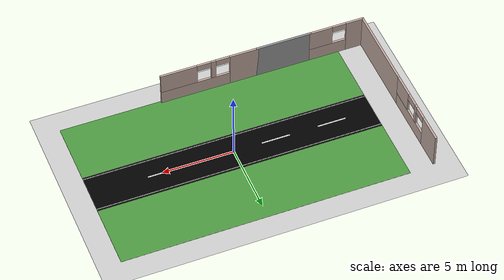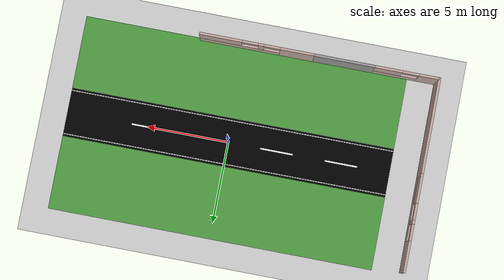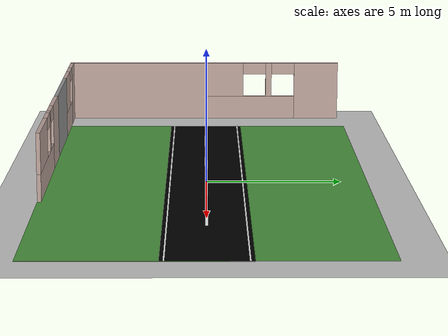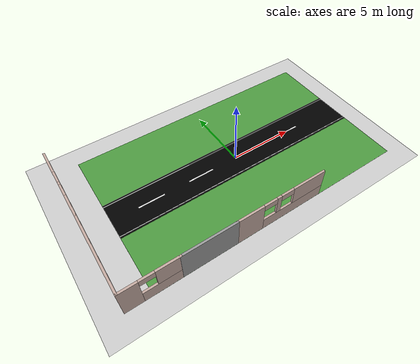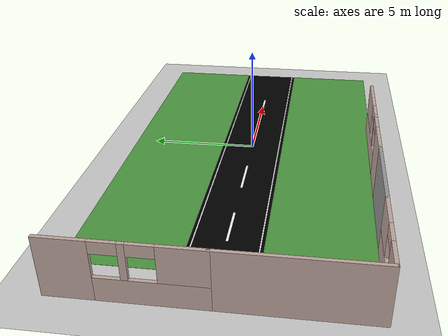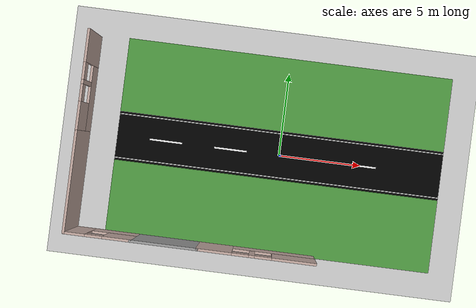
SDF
<sdf version="1.7">
 <world name="default">
  <model name="ground_plane">
   <static>1</static>
   <link name="link">
    <collision name="collision">
     <geometry><plane><normal>0 0 1</normal><size>100 100</size></plane></geometry>
     <surface>
      <contact><collide_bitmask>65535</collide_bitmask></contact>
      <friction><ode><mu>100</mu><mu2>50</mu2></ode></friction>
     </surface>
    </collision>
    <visual name="visual">
     <cast_shadows>0</cast_shadows>
     <geometry><plane><normal>0 0 1</normal><size>100 100</size></plane></geometry>
     <material>
      <script><uri>file://media/materials/scripts/gazebo.material</uri><name>Gazebo/Grey</name></script>
     </material>
    </visual>
   </link>
  </model>
  <model name="road">
   <static>1</static>
   <link name="link">
    <visual name="road_visual">
     <geometry><box><size>20 3 0.01</size></box></geometry>
     <material><ambient>0 0 0 1</ambient><diffuse>0 0 0 1</diffuse></material>
    </visual>
    <visual name="middle_line_1">
     <pose>-7 0 0.005 0 -0 0</pose>
     <geometry><box><size>2 0.1 0.01</size></box></geometry>
     <material><ambient>1 1 1 1</ambient></material>
    </visual>
    <visual name="middle_line_2">
     <pose>-3 0 0.005 0 -0 0</pose>
     <geometry><box><size>2 0.1 0.01</size></box></geometry>
     <material><ambient>1 1 1 1</ambient></material>
    </visual>
    <visual name="middle_line_3">
     <pose>1 0 0.005 0 -0 0</pose>
     <geometry><box><size>2 0.1 0.01</size></box></geometry>
     <material><ambient>1 1 1 1</ambient></material>
    </visual>
    <visual name="middle_line_4">
     <pose>5 0 0.005 0 -0 0</pose>
     <geometry><box><size>2 0.1 0.01</size></box></geometry>
     <material><ambient>1 1 1 1</ambient></material>
    </visual>
    <visual name="left_side_line">
     <pose>0 1.35 0.005 0 -0 0</pose>
     <geometry><box><size>20 0.05 0.01</size></box></geometry>
     <material><ambient>1 1 1 1</ambient></material>
    </visual>
    <visual name="right_side_line">
     <pose>0 -1.35 0.005 0 -0 0</pose>
     <geometry><box><size>20 0.05 0.01</size></box></geometry>
     <material><ambient>1 1 1 1</ambient></material>
    </visual>
    <collision name="road_collision"><geometry><box><size>20 3 0.01</size></box></geometry></collision>
   </link>
  </model>
  <model name="grass_left">
   <static>1</static>
   <link name="link">
    <visual name="visual">
     <geometry><plane><normal>0 0 1</normal><size>20 6</size></plane></geometry>
     <material>
      <script><uri>file://media/materials/scripts/gazebo.material</uri><name>Gazebo/Grass</name></script>
     </material>
    </visual>
   </link>
   <pose>0 3 0.001 0 -0 0</pose>
  </model>
  <model name="grass_right">
   <static>1</static>
   <link name="link">
    <visual name="visual">
     <geometry><plane><normal>0 0 1</normal><size>20 6</size></plane></geometry>
     <material>
      <script><uri>file://media/materials/scripts/gazebo.material</uri><name>Gazebo/Grass</name></script>
     </material>
    </visual>
   </link>
   <pose>0 -3 0.001 0 -0 0</pose>
  </model>
  <model name="Boundary">
   <link name="Wall_0">
    <pose>-12.8748 2.91767 0 0 0 -1.5708</pose>
    <visual name="Wall_0_Visual_0">
     <pose>-2.03434 0 1.25 0 -0 0</pose>
     <geometry><box><size>1.93132 0.15 2.5</size></box></geometry>
     <material>
      <script><uri>file://media/materials/scripts/gazebo.material</uri><name>Gazebo/Grey</name></script>
      <ambient>0.760784 0.662745 0.627451 1</ambient>
      <shader type="pixel"/>
     </material>
    </visual>
    <visual name="Wall_0_Visual_1">
     <pose>0.965658 0 0.5 0 -0 0</pose>
     <geometry><box><size>4.06868 0.15 1</size></box></geometry>
     <material>
      <script><uri>file://media/materials/scripts/gazebo.material</uri><name>Gazebo/Grey</name></script>
      <ambient>0.760784 0.662745 0.627451 1</ambient>
      <shader type="pixel"/>
     </material>
    </visual>
    <visual name="Wall_0_Visual_2">
     <pose>0.061576 0 1.75 0 -0 0</pose>
     <geometry><box><size>0.26052 0.15 1.5</size></box></geometry>
     <material>
      <script><uri>file://media/materials/scripts/gazebo.material</uri><name>Gazebo/Grey</name></script>
      <ambient>0.760784 0.662745 0.627451 1</ambient>
      <shader type="pixel"/>
     </material>
    </visual>
    <visual name="Wall_0_Visual_3">
     <pose>2.09592 0 1.75 0 -0 0</pose>
     <geometry><box><size>1.80816 0.15 1.5</size></box></geometry>
     <material>
      <script><uri>file://media/materials/scripts/gazebo.material</uri><name>Gazebo/Grey</name></script>
      <ambient>0.760784 0.662745 0.627451 1</ambient>
      <shader type="pixel"/>
     </material>
    </visual>
    <visual name="Wall_0_Visual_4">
     <pose>-0.568684 0 2.25 0 -0 0</pose>
     <geometry><box><size>1 0.15 0.5</size></box></geometry>
     <material>
      <script><uri>file://media/materials/scripts/gazebo.material</uri><name>Gazebo/Grey</name></script>
      <ambient>0.760784 0.662745 0.627451 1</ambient>
      <shader type="pixel"/>
     </material>
    </visual>
    <visual name="Wall_0_Visual_5">
     <pose>0.691837 0 2.25 0 -0 0</pose>
     <geometry><box><size>1 0.15 0.5</size></box></geometry>
     <material>
      <script><uri>file://media/materials/scripts/gazebo.material</uri><name>Gazebo/Grey</name></script>
      <ambient>0.760784 0.662745 0.627451 1</ambient>
      <shader type="pixel"/>
     </material>
    </visual>
    <collision name="Wall_0_Collision_0">
     <pose>-2.03434 0 1.25 0 -0 0</pose>
     <geometry><box><size>1.93132 0.15 2.5</size></box></geometry>
     <surface>
      <friction>
       <ode><mu>1</mu><mu2>1</mu2><fdir1>0 0 0</fdir1><slip1>0</slip1><slip2>0</slip2></ode>
       <torsional>
        <coefficient>1</coefficient>
        <patch_radius>0</patch_radius>
        <surface_radius>0</surface_radius>
        <use_patch_radius>1</use_patch_radius>
        <ode><slip>0</slip></ode>
       </torsional>
      </friction>
      <bounce><restitution_coefficient>0</restitution_coefficient><threshold>1e+06</threshold></bounce>
      <contact>
       <collide_without_contact>0</collide_without_contact>
       <collide_without_contact_bitmask>1</collide_without_contact_bitmask>
       <collide_bitmask>1</collide_bitmask>
       <ode>
        <soft_cfm>0</soft_cfm>
        <soft_erp>0.2</soft_erp>
        <kp>1e+13</kp>
        <kd>1</kd>
        <max_vel>0.01</max_vel>
        <min_depth>0</min_depth>
       </ode>
       <bullet>
        <split_impulse>1</split_impulse>
        <split_impulse_penetration_threshold>-0.01</split_impulse_penetration_threshold>
        <soft_cfm>0</soft_cfm>
        <soft_erp>0.2</soft_erp>
        <kp>1e+13</kp>
        <kd>1</kd>
       </bullet>
      </contact>
     </surface>
    </collision>
    <collision name="Wall_0_Collision_1">
     <pose>0.965658 0 0.5 0 -0 0</pose>
     <geometry><box><size>4.06868 0.15 1</size></box></geometry>
     <surface>
      <friction>
       <ode><mu>1</mu><mu2>1</mu2><fdir1>0 0 0</fdir1><slip1>0</slip1><slip2>0</slip2></ode>
       <torsional>
        <coefficient>1</coefficient>
        <patch_radius>0</patch_radius>
        <surface_radius>0</surface_radius>
        <use_patch_radius>1</use_patch_radius>
        <ode><slip>0</slip></ode>
       </torsional>
      </friction>
      <bounce><restitution_coefficient>0</restitution_coefficient><threshold>1e+06</threshold></bounce>
      <contact>
       <collide_without_contact>0</collide_without_contact>
       <collide_without_contact_bitmask>1</collide_without_contact_bitmask>
       <collide_bitmask>1</collide_bitmask>
       <ode>
        <soft_cfm>0</soft_cfm>
        <soft_erp>0.2</soft_erp>
        <kp>1e+13</kp>
        <kd>1</kd>
        <max_vel>0.01</max_vel>
        <min_depth>0</min_depth>
       </ode>
       <bullet>
        <split_impulse>1</split_impulse>
        <split_impulse_penetration_threshold>-0.01</split_impulse_penetration_threshold>
        <soft_cfm>0</soft_cfm>
        <soft_erp>0.2</soft_erp>
        <kp>1e+13</kp>
        <kd>1</kd>
       </bullet>
      </contact>
     </surface>
    </collision>
    <collision name="Wall_0_Collision_2">
     <pose>0.061576 0 1.75 0 -0 0</pose>
     <geometry><box><size>0.26052 0.15 1.5</size></box></geometry>
     <surface>
      <friction>
       <ode><mu>1</mu><mu2>1</mu2><fdir1>0 0 0</fdir1><slip1>0</slip1><slip2>0</slip2></ode>
       <torsional>
        <coefficient>1</coefficient>
        <patch_radius>0</patch_radius>
        <surface_radius>0</surface_radius>
        <use_patch_radius>1</use_patch_radius>
        <ode><slip>0</slip></ode>
       </torsional>
      </friction>
      <bounce><restitution_coefficient>0</restitution_coefficient><threshold>1e+06</threshold></bounce>
      <contact>
       <collide_without_contact>0</collide_without_contact>
       <collide_without_contact_bitmask>1</collide_without_contact_bitmask>
       <collide_bitmask>1</collide_bitmask>
       <ode>
        <soft_cfm>0</soft_cfm>
        <soft_erp>0.2</soft_erp>
        <kp>1e+13</kp>
        <kd>1</kd>
        <max_vel>0.01</max_vel>
        <min_depth>0</min_depth>
       </ode>
       <bullet>
        <split_impulse>1</split_impulse>
        <split_impulse_penetration_threshold>-0.01</split_impulse_penetration_threshold>
        <soft_cfm>0</soft_cfm>
        <soft_erp>0.2</soft_erp>
        <kp>1e+13</kp>
        <kd>1</kd>
       </bullet>
      </contact>
     </surface>
    </collision>
    <collision name="Wall_0_Collision_3">
     <pose>2.09592 0 1.75 0 -0 0</pose>
     <geometry><box><size>1.80816 0.15 1.5</size></box></geometry>
     <surface>
      <friction>
       <ode><mu>1</mu><mu2>1</mu2><fdir1>0 0 0</fdir1><slip1>0</slip1><slip2>0</slip2></ode>
       <torsional>
        <coefficient>1</coefficient>
        <patch_radius>0</patch_radius>
        <surface_radius>0</surface_radius>
        <use_patch_radius>1</use_patch_radius>
        <ode><slip>0</slip></ode>
       </torsional>
      </friction>
      <bounce><restitution_coefficient>0</restitution_coefficient><threshold>1e+06</threshold></bounce>
      <contact>
       <collide_without_contact>0</collide_without_contact>
       <collide_without_contact_bitmask>1</collide_without_contact_bitmask>
       <collide_bitmask>1</collide_bitmask>
       <ode>
        <soft_cfm>0</soft_cfm>
        <soft_erp>0.2</soft_erp>
        <kp>1e+13</kp>
        <kd>1</kd>
        <max_vel>0.01</max_vel>
        <min_depth>0</min_depth>
       </ode>
       <bullet>
        <split_impulse>1</split_impulse>
        <split_impulse_penetration_threshold>-0.01</split_impulse_penetration_threshold>
        <soft_cfm>0</soft_cfm>
        <soft_erp>0.2</soft_erp>
        <kp>1e+13</kp>
        <kd>1</kd>
       </bullet>
      </contact>
     </surface>
    </collision>
    <collision name="Wall_0_Collision_4">
     <pose>-0.568684 0 2.25 0 -0 0</pose>
     <geometry><box><size>1 0.15 0.5</size></box></geometry>
     <surface>
      <friction>
       <ode><mu>1</mu><mu2>1</mu2><fdir1>0 0 0</fdir1><slip1>0</slip1><slip2>0</slip2></ode>
       <torsional>
        <coefficient>1</coefficient>
        <patch_radius>0</patch_radius>
        <surface_radius>0</surface_radius>
        <use_patch_radius>1</use_patch_radius>
        <ode><slip>0</slip></ode>
       </torsional>
      </friction>
      <bounce><restitution_coefficient>0</restitution_coefficient><threshold>1e+06</threshold></bounce>
      <contact>
       <collide_without_contact>0</collide_without_contact>
       <collide_without_contact_bitmask>1</collide_without_contact_bitmask>
       <collide_bitmask>1</collide_bitmask>
       <ode>
        <soft_cfm>0</soft_cfm>
        <soft_erp>0.2</soft_erp>
        <kp>1e+13</kp>
        <kd>1</kd>
        <max_vel>0.01</max_vel>
        <min_depth>0</min_depth>
       </ode>
       <bullet>
        <split_impulse>1</split_impulse>
        <split_impulse_penetration_threshold>-0.01</split_impulse_penetration_threshold>
        <soft_cfm>0</soft_cfm>
        <soft_erp>0.2</soft_erp>
        <kp>1e+13</kp>
        <kd>1</kd>
       </bullet>
      </contact>
     </surface>
    </collision>
    <collision name="Wall_0_Collision_5">
     <pose>0.691837 0 2.25 0 -0 0</pose>
     <geometry><box><size>1 0.15 0.5</size></box></geometry>
     <surface>
      <friction>
       <ode><mu>1</mu><mu2>1</mu2><fdir1>0 0 0</fdir1><slip1>0</slip1><slip2>0</slip2></ode>
       <torsional>
        <coefficient>1</coefficient>
        <patch_radius>0</patch_radius>
        <surface_radius>0</surface_radius>
        <use_patch_radius>1</use_patch_radius>
        <ode><slip>0</slip></ode>
       </torsional>
      </friction>
      <bounce><restitution_coefficient>0</restitution_coefficient><threshold>1e+06</threshold></bounce>
      <contact>
       <collide_without_contact>0</collide_without_contact>
       <collide_without_contact_bitmask>1</collide_without_contact_bitmask>
       <collide_bitmask>1</collide_bitmask>
       <ode>
        <soft_cfm>0</soft_cfm>
        <soft_erp>0.2</soft_erp>
        <kp>1e+13</kp>
        <kd>1</kd>
        <max_vel>0.01</max_vel>
        <min_depth>0</min_depth>
       </ode>
       <bullet>
        <split_impulse>1</split_impulse>
        <split_impulse_penetration_threshold>-0.01</split_impulse_penetration_threshold>
        <soft_cfm>0</soft_cfm>
        <soft_erp>0.2</soft_erp>
        <kp>1e+13</kp>
        <kd>1</kd>
       </bullet>
      </contact>
     </surface>
    </collision>
   </link>
   <link name="Wall_10">
    <pose>-7.1 -5.85736 0 0 0 -1.2e-05</pose>
    <visual name="Wall_10_Visual">
     <pose>0 0 1.25 0 -0 0</pose>
     <geometry><box><size>4 0.15 2.5</size></box></geometry>
     <material>
      <script><uri>file://media/materials/scripts/gazebo.material</uri><name>Gazebo/Grey</name></script>
      <ambient>1 1 1 1</ambient>
      <shader type="pixel"/>
     </material>
    </visual>
    <collision name="Wall_10_Collision">
     <pose>0 0 1.25 0 -0 0</pose>
     <geometry><box><size>4 0.15 2.5</size></box></geometry>
     <surface>
      <friction>
       <ode><mu>1</mu><mu2>1</mu2><fdir1>0 0 0</fdir1><slip1>0</slip1><slip2>0</slip2></ode>
       <torsional>
        <coefficient>1</coefficient>
        <patch_radius>0</patch_radius>
        <surface_radius>0</surface_radius>
        <use_patch_radius>1</use_patch_radius>
        <ode><slip>0</slip></ode>
       </torsional>
      </friction>
      <bounce><restitution_coefficient>0</restitution_coefficient><threshold>1e+06</threshold></bounce>
      <contact>
       <collide_without_contact>0</collide_without_contact>
       <collide_without_contact_bitmask>1</collide_without_contact_bitmask>
       <collide_bitmask>1</collide_bitmask>
       <ode>
        <soft_cfm>0</soft_cfm>
        <soft_erp>0.2</soft_erp>
        <kp>1e+13</kp>
        <kd>1</kd>
        <max_vel>0.01</max_vel>
        <min_depth>0</min_depth>
       </ode>
       <bullet>
        <split_impulse>1</split_impulse>
        <split_impulse_penetration_threshold>-0.01</split_impulse_penetration_threshold>
        <soft_cfm>0</soft_cfm>
        <soft_erp>0.2</soft_erp>
        <kp>1e+13</kp>
        <kd>1</kd>
       </bullet>
      </contact>
     </surface>
    </collision>
   </link>
   <link name="Wall_14">
    <pose>-1.75018 -5.85738 0 0 -0 0</pose>
    <visual name="Wall_14_Visual_0">
     <pose>-2.46755 0 1.25 0 -0 0</pose>
     <geometry><box><size>2.0649 0.15 2.5</size></box></geometry>
     <material>
      <script><uri>file://media/materials/scripts/gazebo.material</uri><name>Gazebo/Grey</name></script>
      <ambient>0.760784 0.662745 0.627451 1</ambient>
      <shader type="pixel"/>
     </material>
    </visual>
    <visual name="Wall_14_Visual_1">
     <pose>1.03245 0 0.5 0 -0 0</pose>
     <geometry><box><size>4.93509 0.15 1</size></box></geometry>
     <material>
      <script><uri>file://media/materials/scripts/gazebo.material</uri><name>Gazebo/Grey</name></script>
      <ambient>0.760784 0.662745 0.627451 1</ambient>
      <shader type="pixel"/>
     </material>
    </visual>
    <visual name="Wall_14_Visual_2">
     <pose>-0.267578 0 1.75 0 -0 0</pose>
     <geometry><box><size>0.335034 0.15 1.5</size></box></geometry>
     <material>
      <script><uri>file://media/materials/scripts/gazebo.material</uri><name>Gazebo/Grey</name></script>
      <ambient>0.760784 0.662745 0.627451 1</ambient>
      <shader type="pixel"/>
     </material>
    </visual>
    <visual name="Wall_14_Visual_3">
     <pose>2.19997 0 1.75 0 -0 0</pose>
     <geometry><box><size>2.60006 0.15 1.5</size></box></geometry>
     <material>
      <script><uri>file://media/materials/scripts/gazebo.material</uri><name>Gazebo/Grey</name></script>
      <ambient>0.760784 0.662745 0.627451 1</ambient>
      <shader type="pixel"/>
     </material>
    </visual>
    <visual name="Wall_14_Visual_4">
     <pose>-0.935095 0 2.25 0 -0 0</pose>
     <geometry><box><size>1 0.15 0.5</size></box></geometry>
     <material>
      <script><uri>file://media/materials/scripts/gazebo.material</uri><name>Gazebo/Grey</name></script>
      <ambient>0.760784 0.662745 0.627451 1</ambient>
      <shader type="pixel"/>
     </material>
    </visual>
    <visual name="Wall_14_Visual_5">
     <pose>0.399939 0 2.25 0 -0 0</pose>
     <geometry><box><size>1 0.15 0.5</size></box></geometry>
     <material>
      <script><uri>file://media/materials/scripts/gazebo.material</uri><name>Gazebo/Grey</name></script>
      <ambient>0.760784 0.662745 0.627451 1</ambient>
      <shader type="pixel"/>
     </material>
    </visual>
    <collision name="Wall_14_Collision_0">
     <pose>-2.46755 0 1.25 0 -0 0</pose>
     <geometry><box><size>2.0649 0.15 2.5</size></box></geometry>
     <surface>
      <friction>
       <ode><mu>1</mu><mu2>1</mu2><fdir1>0 0 0</fdir1><slip1>0</slip1><slip2>0</slip2></ode>
       <torsional>
        <coefficient>1</coefficient>
        <patch_radius>0</patch_radius>
        <surface_radius>0</surface_radius>
        <use_patch_radius>1</use_patch_radius>
        <ode><slip>0</slip></ode>
       </torsional>
      </friction>
      <bounce><restitution_coefficient>0</restitution_coefficient><threshold>1e+06</threshold></bounce>
      <contact>
       <collide_without_contact>0</collide_without_contact>
       <collide_without_contact_bitmask>1</collide_without_contact_bitmask>
       <collide_bitmask>1</collide_bitmask>
       <ode>
        <soft_cfm>0</soft_cfm>
        <soft_erp>0.2</soft_erp>
        <kp>1e+13</kp>
        <kd>1</kd>
        <max_vel>0.01</max_vel>
        <min_depth>0</min_depth>
       </ode>
       <bullet>
        <split_impulse>1</split_impulse>
        <split_impulse_penetration_threshold>-0.01</split_impulse_penetration_threshold>
        <soft_cfm>0</soft_cfm>
        <soft_erp>0.2</soft_erp>
        <kp>1e+13</kp>
        <kd>1</kd>
       </bullet>
      </contact>
     </surface>
    </collision>
    <collision name="Wall_14_Collision_1">
     <pose>1.03245 0 0.5 0 -0 0</pose>
     <geometry><box><size>4.93509 0.15 1</size></box></geometry>
     <surface>
      <friction>
       <ode><mu>1</mu><mu2>1</mu2><fdir1>0 0 0</fdir1><slip1>0</slip1><slip2>0</slip2></ode>
       <torsional>
        <coefficient>1</coefficient>
        <patch_radius>0</patch_radius>
        <surface_radius>0</surface_radius>
        <use_patch_radius>1</use_patch_radius>
        <ode><slip>0</slip></ode>
       </torsional>
      </friction>
      <bounce><restitution_coefficient>0</restitution_coefficient><threshold>1e+06</threshold></bounce>
      <contact>
       <collide_without_contact>0</collide_without_contact>
       <collide_without_contact_bitmask>1</collide_without_contact_bitmask>
       <collide_bitmask>1</collide_bitmask>
       <ode>
        <soft_cfm>0</soft_cfm>
        <soft_erp>0.2</soft_erp>
        <kp>1e+13</kp>
        <kd>1</kd>
        <max_vel>0.01</max_vel>
        <min_depth>0</min_depth>
       </ode>
       <bullet>
        <split_impulse>1</split_impulse>
        <split_impulse_penetration_threshold>-0.01</split_impulse_penetration_threshold>
        <soft_cfm>0</soft_cfm>
        <soft_erp>0.2</soft_erp>
        <kp>1e+13</kp>
        <kd>1</kd>
       </bullet>
      </contact>
     </surface>
    </collision>
    <collision name="Wall_14_Collision_3">
     <pose>2.19997 0 1.75 0 -0 0</pose>
     <geometry><box><size>2.60006 0.15 1.5</size></box></geometry>
     <surface>
      <friction>
       <ode><mu>1</mu><mu2>1</mu2><fdir1>0 0 0</fdir1><slip1>0</slip1><slip2>0</slip2></ode>
       <torsional>
        <coefficient>1</coefficient>
        <patch_radius>0</patch_radius>
        <surface_radius>0</surface_radius>
        <use_patch_radius>1</use_patch_radius>
        <ode><slip>0</slip></ode>
       </torsional>
      </friction>
      <bounce><restitution_coefficient>0</restitution_coefficient><threshold>1e+06</threshold></bounce>
      <contact>
       <collide_without_contact>0</collide_without_contact>
       <collide_without_contact_bitmask>1</collide_without_contact_bitmask>
       <collide_bitmask>1</collide_bitmask>
       <ode>
        <soft_cfm>0</soft_cfm>
        <soft_erp>0.2</soft_erp>
        <kp>1e+13</kp>
        <kd>1</kd>
        <max_vel>0.01</max_vel>
        <min_depth>0</min_depth>
       </ode>
       <bullet>
        <split_impulse>1</split_impulse>
        <split_impulse_penetration_threshold>-0.01</split_impulse_penetration_threshold>
        <soft_cfm>0</soft_cfm>
        <soft_erp>0.2</soft_erp>
        <kp>1e+13</kp>
        <kd>1</kd>
       </bullet>
      </contact>
     </surface>
    </collision>
    <collision name="Wall_14_Collision_2">
     <pose>-0.267578 0 1.75 0 -0 0</pose>
     <geometry><box><size>0.335034 0.15 1.5</size></box></geometry>
     <surface>
      <friction>
       <ode><mu>1</mu><mu2>1</mu2><fdir1>0 0 0</fdir1><slip1>0</slip1><slip2>0</slip2></ode>
       <torsional>
        <coefficient>1</coefficient>
        <patch_radius>0</patch_radius>
        <surface_radius>0</surface_radius>
        <use_patch_radius>1</use_patch_radius>
        <ode><slip>0</slip></ode>
       </torsional>
      </friction>
      <bounce><restitution_coefficient>0</restitution_coefficient><threshold>1e+06</threshold></bounce>
      <contact>
       <collide_without_contact>0</collide_without_contact>
       <collide_without_contact_bitmask>1</collide_without_contact_bitmask>
       <collide_bitmask>1</collide_bitmask>
       <ode>
        <soft_cfm>0</soft_cfm>
        <soft_erp>0.2</soft_erp>
        <kp>1e+13</kp>
        <kd>1</kd>
        <max_vel>0.01</max_vel>
        <min_depth>0</min_depth>
       </ode>
       <bullet>
        <split_impulse>1</split_impulse>
        <split_impulse_penetration_threshold>-0.01</split_impulse_penetration_threshold>
        <soft_cfm>0</soft_cfm>
        <soft_erp>0.2</soft_erp>
        <kp>1e+13</kp>
        <kd>1</kd>
       </bullet>
      </contact>
     </surface>
    </collision>
    <collision name="Wall_14_Collision_4">
     <pose>-0.935095 0 2.25 0 -0 0</pose>
     <geometry><box><size>1 0.15 0.5</size></box></geometry>
     <surface>
      <friction>
       <ode><mu>1</mu><mu2>1</mu2><fdir1>0 0 0</fdir1><slip1>0</slip1><slip2>0</slip2></ode>
       <torsional>
        <coefficient>1</coefficient>
        <patch_radius>0</patch_radius>
        <surface_radius>0</surface_radius>
        <use_patch_radius>1</use_patch_radius>
        <ode><slip>0</slip></ode>
       </torsional>
      </friction>
      <bounce><restitution_coefficient>0</restitution_coefficient><threshold>1e+06</threshold></bounce>
      <contact>
       <collide_without_contact>0</collide_without_contact>
       <collide_without_contact_bitmask>1</collide_without_contact_bitmask>
       <collide_bitmask>1</collide_bitmask>
       <ode>
        <soft_cfm>0</soft_cfm>
        <soft_erp>0.2</soft_erp>
        <kp>1e+13</kp>
        <kd>1</kd>
        <max_vel>0.01</max_vel>
        <min_depth>0</min_depth>
       </ode>
       <bullet>
        <split_impulse>1</split_impulse>
        <split_impulse_penetration_threshold>-0.01</split_impulse_penetration_threshold>
        <soft_cfm>0</soft_cfm>
        <soft_erp>0.2</soft_erp>
        <kp>1e+13</kp>
        <kd>1</kd>
       </bullet>
      </contact>
     </surface>
    </collision>
    <collision name="Wall_14_Collision_5">
     <pose>0.399939 0 2.25 0 -0 0</pose>
     <geometry><box><size>1 0.15 0.5</size></box></geometry>
     <surface>
      <friction>
       <ode><mu>1</mu><mu2>1</mu2><fdir1>0 0 0</fdir1><slip1>0</slip1><slip2>0</slip2></ode>
       <torsional>
        <coefficient>1</coefficient>
        <patch_radius>0</patch_radius>
        <surface_radius>0</surface_radius>
        <use_patch_radius>1</use_patch_radius>
        <ode><slip>0</slip></ode>
       </torsional>
      </friction>
      <bounce><restitution_coefficient>0</restitution_coefficient><threshold>1e+06</threshold></bounce>
      <contact>
       <collide_without_contact>0</collide_without_contact>
       <collide_without_contact_bitmask>1</collide_without_contact_bitmask>
       <collide_bitmask>1</collide_bitmask>
       <ode>
        <soft_cfm>0</soft_cfm>
        <soft_erp>0.2</soft_erp>
        <kp>1e+13</kp>
        <kd>1</kd>
        <max_vel>0.01</max_vel>
        <min_depth>0</min_depth>
       </ode>
       <bullet>
        <split_impulse>1</split_impulse>
        <split_impulse_penetration_threshold>-0.01</split_impulse_penetration_threshold>
        <soft_cfm>0</soft_cfm>
        <soft_erp>0.2</soft_erp>
        <kp>1e+13</kp>
        <kd>1</kd>
       </bullet>
      </contact>
     </surface>
    </collision>
   </link>
   <link name="Wall_2">
    <pose>-12.8748 -2.93233 0 0 0 -1.5708</pose>
    <visual name="Wall_2_Visual">
     <pose>0 0 1.25 0 -0 0</pose>
     <geometry><box><size>6 0.15 2.5</size></box></geometry>
     <material>
      <script><uri>file://media/materials/scripts/gazebo.material</uri><name>Gazebo/Grey</name></script>
      <ambient>0.760784 0.662745 0.627451 1</ambient>
      <shader type="pixel"/>
     </material>
    </visual>
    <collision name="Wall_2_Collision">
     <pose>0 0 1.25 0 -0 0</pose>
     <geometry><box><size>6 0.15 2.5</size></box></geometry>
     <surface>
      <friction>
       <ode><mu>1</mu><mu2>1</mu2><fdir1>0 0 0</fdir1><slip1>0</slip1><slip2>0</slip2></ode>
       <torsional>
        <coefficient>1</coefficient>
        <patch_radius>0</patch_radius>
        <surface_radius>0</surface_radius>
        <use_patch_radius>1</use_patch_radius>
        <ode><slip>0</slip></ode>
       </torsional>
      </friction>
      <bounce><restitution_coefficient>0</restitution_coefficient><threshold>1e+06</threshold></bounce>
      <contact>
       <collide_without_contact>0</collide_without_contact>
       <collide_without_contact_bitmask>1</collide_without_contact_bitmask>
       <collide_bitmask>1</collide_bitmask>
       <ode>
        <soft_cfm>0</soft_cfm>
        <soft_erp>0.2</soft_erp>
        <kp>1e+13</kp>
        <kd>1</kd>
        <max_vel>0.01</max_vel>
        <min_depth>0</min_depth>
       </ode>
       <bullet>
        <split_impulse>1</split_impulse>
        <split_impulse_penetration_threshold>-0.01</split_impulse_penetration_threshold>
        <soft_cfm>0</soft_cfm>
        <soft_erp>0.2</soft_erp>
        <kp>1e+13</kp>
        <kd>1</kd>
       </bullet>
      </contact>
     </surface>
    </collision>
   </link>
   <link name="Wall_4">
    <pose>-10.9498 -5.85733 0 0 -0 0</pose>
    <visual name="Wall_4_Visual_0">
     <pose>-1.34533 0 1.25 0 -0 0</pose>
     <geometry><box><size>1.30933 0.15 2.5</size></box></geometry>
     <material>
      <script><uri>file://media/materials/scripts/gazebo.material</uri><name>Gazebo/Grey</name></script>
      <ambient>0.760784 0.662745 0.627451 1</ambient>
      <shader type="pixel"/>
     </material>
    </visual>
    <visual name="Wall_4_Visual_1">
     <pose>0.654667 0 0.5 0 -0 0</pose>
     <geometry><box><size>2.69067 0.15 1</size></box></geometry>
     <material>
      <script><uri>file://media/materials/scripts/gazebo.material</uri><name>Gazebo/Grey</name></script>
      <ambient>0.760784 0.662745 0.627451 1</ambient>
      <shader type="pixel"/>
     </material>
    </visual>
    <visual name="Wall_4_Visual_2">
     <pose>1.15467 0 1.75 0 -0 0</pose>
     <geometry><box><size>1.69067 0.15 1.5</size></box></geometry>
     <material>
      <script><uri>file://media/materials/scripts/gazebo.material</uri><name>Gazebo/Grey</name></script>
      <ambient>0.760784 0.662745 0.627451 1</ambient>
      <shader type="pixel"/>
     </material>
    </visual>
    <visual name="Wall_4_Visual_3">
     <pose>-0.190666 0 2.25 0 -0 0</pose>
     <geometry><box><size>1 0.15 0.5</size></box></geometry>
     <material>
      <script><uri>file://media/materials/scripts/gazebo.material</uri><name>Gazebo/Grey</name></script>
      <ambient>0.760784 0.662745 0.627451 1</ambient>
      <shader type="pixel"/>
     </material>
    </visual>
    <collision name="Wall_4_Collision_0">
     <pose>-1.34533 0 1.25 0 -0 0</pose>
     <geometry><box><size>1.30933 0.15 2.5</size></box></geometry>
     <surface>
      <friction>
       <ode><mu>1</mu><mu2>1</mu2><fdir1>0 0 0</fdir1><slip1>0</slip1><slip2>0</slip2></ode>
       <torsional>
        <coefficient>1</coefficient>
        <patch_radius>0</patch_radius>
        <surface_radius>0</surface_radius>
        <use_patch_radius>1</use_patch_radius>
        <ode><slip>0</slip></ode>
       </torsional>
      </friction>
      <bounce><restitution_coefficient>0</restitution_coefficient><threshold>1e+06</threshold></bounce>
      <contact>
       <collide_without_contact>0</collide_without_contact>
       <collide_without_contact_bitmask>1</collide_without_contact_bitmask>
       <collide_bitmask>1</collide_bitmask>
       <ode>
        <soft_cfm>0</soft_cfm>
        <soft_erp>0.2</soft_erp>
        <kp>1e+13</kp>
        <kd>1</kd>
        <max_vel>0.01</max_vel>
        <min_depth>0</min_depth>
       </ode>
       <bullet>
        <split_impulse>1</split_impulse>
        <split_impulse_penetration_threshold>-0.01</split_impulse_penetration_threshold>
        <soft_cfm>0</soft_cfm>
        <soft_erp>0.2</soft_erp>
        <kp>1e+13</kp>
        <kd>1</kd>
       </bullet>
      </contact>
     </surface>
    </collision>
    <collision name="Wall_4_Collision_1">
     <pose>0.654667 0 0.5 0 -0 0</pose>
     <geometry><box><size>2.69067 0.15 1</size></box></geometry>
     <surface>
      <friction>
       <ode><mu>1</mu><mu2>1</mu2><fdir1>0 0 0</fdir1><slip1>0</slip1><slip2>0</slip2></ode>
       <torsional>
        <coefficient>1</coefficient>
        <patch_radius>0</patch_radius>
        <surface_radius>0</surface_radius>
        <use_patch_radius>1</use_patch_radius>
        <ode><slip>0</slip></ode>
       </torsional>
      </friction>
      <bounce><restitution_coefficient>0</restitution_coefficient><threshold>1e+06</threshold></bounce>
      <contact>
       <collide_without_contact>0</collide_without_contact>
       <collide_without_contact_bitmask>1</collide_without_contact_bitmask>
       <collide_bitmask>1</collide_bitmask>
       <ode>
        <soft_cfm>0</soft_cfm>
        <soft_erp>0.2</soft_erp>
        <kp>1e+13</kp>
        <kd>1</kd>
        <max_vel>0.01</max_vel>
        <min_depth>0</min_depth>
       </ode>
       <bullet>
        <split_impulse>1</split_impulse>
        <split_impulse_penetration_threshold>-0.01</split_impulse_penetration_threshold>
        <soft_cfm>0</soft_cfm>
        <soft_erp>0.2</soft_erp>
        <kp>1e+13</kp>
        <kd>1</kd>
       </bullet>
      </contact>
     </surface>
    </collision>
    <collision name="Wall_4_Collision_2">
     <pose>1.15467 0 1.75 0 -0 0</pose>
     <geometry><box><size>1.69067 0.15 1.5</size></box></geometry>
     <surface>
      <friction>
       <ode><mu>1</mu><mu2>1</mu2><fdir1>0 0 0</fdir1><slip1>0</slip1><slip2>0</slip2></ode>
       <torsional>
        <coefficient>1</coefficient>
        <patch_radius>0</patch_radius>
        <surface_radius>0</surface_radius>
        <use_patch_radius>1</use_patch_radius>
        <ode><slip>0</slip></ode>
       </torsional>
      </friction>
      <bounce><restitution_coefficient>0</restitution_coefficient><threshold>1e+06</threshold></bounce>
      <contact>
       <collide_without_contact>0</collide_without_contact>
       <collide_without_contact_bitmask>1</collide_without_contact_bitmask>
       <collide_bitmask>1</collide_bitmask>
       <ode>
        <soft_cfm>0</soft_cfm>
        <soft_erp>0.2</soft_erp>
        <kp>1e+13</kp>
        <kd>1</kd>
        <max_vel>0.01</max_vel>
        <min_depth>0</min_depth>
       </ode>
       <bullet>
        <split_impulse>1</split_impulse>
        <split_impulse_penetration_threshold>-0.01</split_impulse_penetration_threshold>
        <soft_cfm>0</soft_cfm>
        <soft_erp>0.2</soft_erp>
        <kp>1e+13</kp>
        <kd>1</kd>
       </bullet>
      </contact>
     </surface>
    </collision>
    <collision name="Wall_4_Collision_3">
     <pose>-0.190666 0 2.25 0 -0 0</pose>
     <geometry><box><size>1 0.15 0.5</size></box></geometry>
     <surface>
      <friction>
       <ode><mu>1</mu><mu2>1</mu2><fdir1>0 0 0</fdir1><slip1>0</slip1><slip2>0</slip2></ode>
       <torsional>
        <coefficient>1</coefficient>
        <patch_radius>0</patch_radius>
        <surface_radius>0</surface_radius>
        <use_patch_radius>1</use_patch_radius>
        <ode><slip>0</slip></ode>
       </torsional>
      </friction>
      <bounce><restitution_coefficient>0</restitution_coefficient><threshold>1e+06</threshold></bounce>
      <contact>
       <collide_without_contact>0</collide_without_contact>
       <collide_without_contact_bitmask>1</collide_without_contact_bitmask>
       <collide_bitmask>1</collide_bitmask>
       <ode>
        <soft_cfm>0</soft_cfm>
        <soft_erp>0.2</soft_erp>
        <kp>1e+13</kp>
        <kd>1</kd>
        <max_vel>0.01</max_vel>
        <min_depth>0</min_depth>
       </ode>
       <bullet>
        <split_impulse>1</split_impulse>
        <split_impulse_penetration_threshold>-0.01</split_impulse_penetration_threshold>
        <soft_cfm>0</soft_cfm>
        <soft_erp>0.2</soft_erp>
        <kp>1e+13</kp>
        <kd>1</kd>
       </bullet>
      </contact>
     </surface>
    </collision>
   </link>
   <static>1</static>
   <pose>1.1243 -0.06601 0 0 -0 0</pose>
  </model>
 </world>
</sdf>
